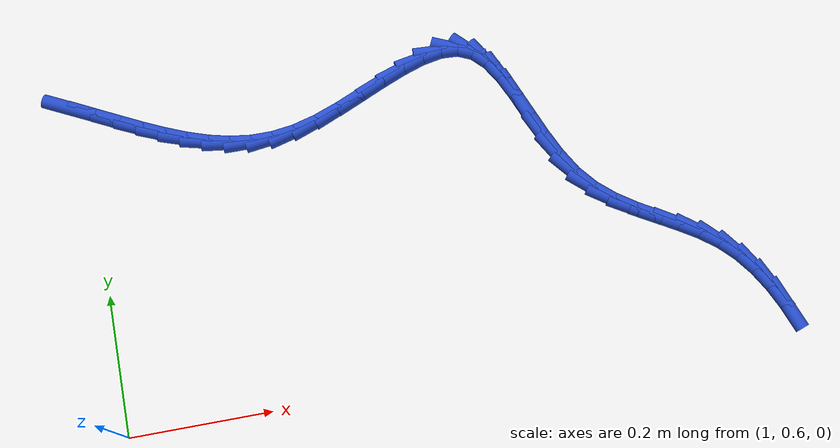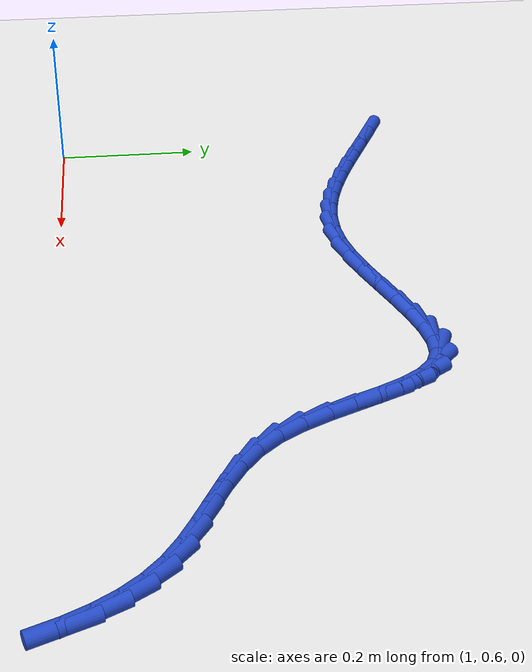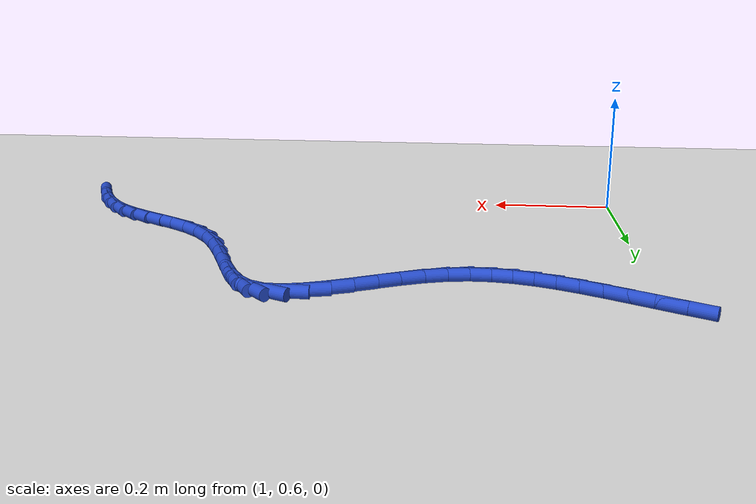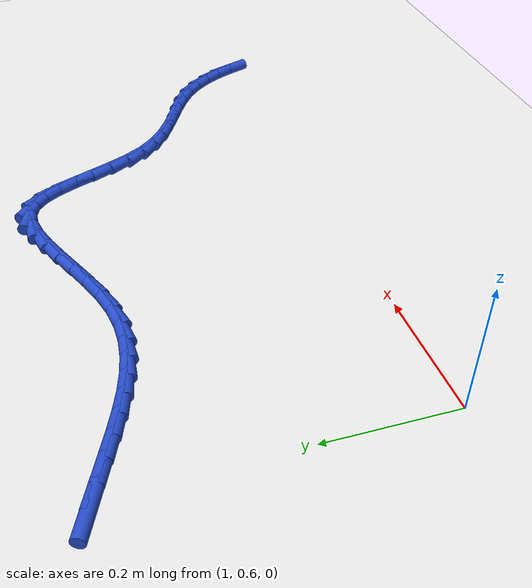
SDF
<sdf version="1.6">
 <world name="default">
  <model name="ground_plane">
   <static>1</static>
   <link name="link">
    <collision name="collision">
     <geometry><plane><normal>0 0 1</normal><size>100 100</size></plane></geometry>
     <surface><friction><ode><mu>100</mu><mu2>50</mu2></ode></friction></surface>
    </collision>
    <visual name="visual">
     <cast_shadows>0</cast_shadows>
     <geometry><plane><normal>0 0 1</normal><size>100 100</size></plane></geometry>
     <material>
      <script><uri>file://media/materials/scripts/gazebo.material</uri><name>Gazebo/WhiteGlow</name></script>
     </material>
    </visual>
   </link>
  </model>
  <model name="line">
   <link name="link_53">
    <pose>0.9800478792944008 1.0819466614217355 0.01 0 1.57 -0.4588191028057761</pose>
    <collision name="collision">
     <geometry><cylinder><radius>0.01</radius><length>0.08</length></cylinder></geometry>
    </collision>
    <visual name="visual">
     <material>
      <script><name>Gazebo/Blue</name><uri>file://media/materials/scripts/gazebo.material</uri></script>
     </material>
     <geometry><cylinder><radius>0.01</radius><length>0.08</length></cylinder></geometry>
    </visual>
   </link>
   <link name="link_54">
    <pose>1.0137996651301913 1.0652739928319868 0.01 0 1.57 -0.4673045646895924</pose>
    <collision name="collision">
     <geometry><cylinder><radius>0.01</radius><length>0.08</length></cylinder></geometry>
    </collision>
    <visual name="visual">
     <material>
      <script><name>Gazebo/Blue</name><uri>file://media/materials/scripts/gazebo.material</uri></script>
     </material>
     <geometry><cylinder><radius>0.01</radius><length>0.08</length></cylinder></geometry>
    </visual>
   </link>
   <link name="link_55">
    <pose>1.0462949452497448 1.0488775377544979 0.01 0 1.57 -0.4601664658742699</pose>
    <collision name="collision">
     <geometry><cylinder><radius>0.01</radius><length>0.08</length></cylinder></geometry>
    </collision>
    <visual name="visual">
     <material>
      <script><name>Gazebo/Blue</name><uri>file://media/materials/scripts/gazebo.material</uri></script>
     </material>
     <geometry><cylinder><radius>0.01</radius><length>0.08</length></cylinder></geometry>
    </visual>
   </link>
   <link name="link_56">
    <pose>1.0777805167422847 1.033271521729199 0.01 0 1.57 -0.4352807061181367</pose>
    <collision name="collision">
     <geometry><cylinder><radius>0.01</radius><length>0.08</length></cylinder></geometry>
    </collision>
    <visual name="visual">
     <material>
      <script><name>Gazebo/Blue</name><uri>file://media/materials/scripts/gazebo.material</uri></script>
     </material>
     <geometry><cylinder><radius>0.01</radius><length>0.08</length></cylinder></geometry>
    </visual>
   </link>
   <link name="link_57">
    <pose>1.1085363821886196 1.0189691827040934 0.01 0 1.57 -0.3907880509113712</pose>
    <collision name="collision">
     <geometry><cylinder><radius>0.01</radius><length>0.08</length></cylinder></geometry>
    </collision>
    <visual name="visual">
     <material>
      <script><name>Gazebo/Blue</name><uri>file://media/materials/scripts/gazebo.material</uri></script>
     </material>
     <geometry><cylinder><radius>0.01</radius><length>0.08</length></cylinder></geometry>
    </visual>
   </link>
   <link name="link_58">
    <pose>1.1388425441695582 1.0064837586271835 0.01 0 1.57 -0.32502557453167613</pose>
    <collision name="collision">
     <geometry><cylinder><radius>0.01</radius><length>0.08</length></cylinder></geometry>
    </collision>
    <visual name="visual">
     <material>
      <script><name>Gazebo/Blue</name><uri>file://media/materials/scripts/gazebo.material</uri></script>
     </material>
     <geometry><cylinder><radius>0.01</radius><length>0.08</length></cylinder></geometry>
    </visual>
   </link>
   <link name="link_59">
    <pose>1.1689790052659095 0.9963284874464731 0.01 0 1.57 -0.23719043581093252</pose>
    <collision name="collision">
     <geometry><cylinder><radius>0.01</radius><length>0.08</length></cylinder></geometry>
    </collision>
    <visual name="visual">
     <material>
      <script><name>Gazebo/Blue</name><uri>file://media/materials/scripts/gazebo.material</uri></script>
     </material>
     <geometry><cylinder><radius>0.01</radius><length>0.08</length></cylinder></geometry>
    </visual>
   </link>
   <link name="link_60">
    <pose>1.1992257680584817 0.9890166071099648 0.01 0 1.57 -0.12839005825136435</pose>
    <collision name="collision">
     <geometry><cylinder><radius>0.01</radius><length>0.08</length></cylinder></geometry>
    </collision>
    <visual name="visual">
     <material>
      <script><name>Gazebo/Blue</name><uri>file://media/materials/scripts/gazebo.material</uri></script>
     </material>
     <geometry><cylinder><radius>0.01</radius><length>0.08</length></cylinder></geometry>
    </visual>
   </link>
   <link name="link_61">
    <pose>1.2298628351280843 0.9850613555656613 0.01 0 1.57 -0.0027272997279025797</pose>
    <collision name="collision">
     <geometry><cylinder><radius>0.01</radius><length>0.08</length></cylinder></geometry>
    </collision>
    <visual name="visual">
     <material>
      <script><name>Gazebo/Blue</name><uri>file://media/materials/scripts/gazebo.material</uri></script>
     </material>
     <geometry><cylinder><radius>0.01</radius><length>0.08</length></cylinder></geometry>
    </visual>
   </link>
   <link name="link_62">
    <pose>1.261170209055525 0.9849759707615655 0.01 0 1.57 0.1324508776225954</pose>
    <collision name="collision">
     <geometry><cylinder><radius>0.01</radius><length>0.08</length></cylinder></geometry>
    </collision>
    <visual name="visual">
     <material>
      <script><name>Gazebo/Blue</name><uri>file://media/materials/scripts/gazebo.material</uri></script>
     </material>
     <geometry><cylinder><radius>0.01</radius><length>0.08</length></cylinder></geometry>
    </visual>
   </link>
   <link name="link_63">
    <pose>1.2934278924216134 0.9892736906456812 0.01 0 1.57 0.26433159499002545</pose>
    <collision name="collision">
     <geometry><cylinder><radius>0.01</radius><length>0.08</length></cylinder></geometry>
    </collision>
    <visual name="visual">
     <material>
      <script><name>Gazebo/Blue</name><uri>file://media/materials/scripts/gazebo.material</uri></script>
     </material>
     <geometry><cylinder><radius>0.01</radius><length>0.08</length></cylinder></geometry>
    </visual>
   </link>
   <link name="link_64">
    <pose>1.3268551706488958 0.9983212866600673 0.01 0 1.57 0.3577117290123947</pose>
    <collision name="collision">
     <geometry><cylinder><radius>0.01</radius><length>0.08</length></cylinder></geometry>
    </collision>
    <visual name="visual">
     <material>
      <script><name>Gazebo/Blue</name><uri>file://media/materials/scripts/gazebo.material</uri></script>
     </material>
     <geometry><cylinder><radius>0.01</radius><length>0.08</length></cylinder></geometry>
    </visual>
   </link>
   <link name="link_65">
    <pose>1.3611070760004595 1.011124396242834 0.01 0 1.57 0.4066435163237283</pose>
    <collision name="collision">
     <geometry><cylinder><radius>0.01</radius><length>0.08</length></cylinder></geometry>
    </collision>
    <visual name="visual">
     <material>
      <script><name>Gazebo/Blue</name><uri>file://media/materials/scripts/gazebo.material</uri></script>
     </material>
     <geometry><cylinder><radius>0.01</radius><length>0.08</length></cylinder></geometry>
    </visual>
   </link>
   <link name="link_66">
    <pose>1.395532208485417 1.0259494578505726 0.01 0 1.57 0.4187142075795374</pose>
    <collision name="collision">
     <geometry><cylinder><radius>0.01</radius><length>0.08</length></cylinder></geometry>
    </collision>
    <visual name="visual">
     <material>
      <script><name>Gazebo/Blue</name><uri>file://media/materials/scripts/gazebo.material</uri></script>
     </material>
     <geometry><cylinder><radius>0.01</radius><length>0.08</length></cylinder></geometry>
    </visual>
   </link>
   <link name="link_67">
    <pose>1.4294761205208637 1.041055558308686 0.01 0 1.57 0.39417088214150325</pose>
    <collision name="collision">
     <geometry><cylinder><radius>0.01</radius><length>0.08</length></cylinder></geometry>
    </collision>
    <visual name="visual">
     <material>
      <script><name>Gazebo/Blue</name><uri>file://media/materials/scripts/gazebo.material</uri></script>
     </material>
     <geometry><cylinder><radius>0.01</radius><length>0.08</length></cylinder></geometry>
    </visual>
   </link>
   <link name="link_68">
    <pose>1.4622843645238959 1.0547017844425797 0.01 0 1.57 0.3248248254768287</pose>
    <collision name="collision">
     <geometry><cylinder><radius>0.01</radius><length>0.08</length></cylinder></geometry>
    </collision>
    <visual name="visual">
     <material>
      <script><name>Gazebo/Blue</name><uri>file://media/materials/scripts/gazebo.material</uri></script>
     </material>
     <geometry><cylinder><radius>0.01</radius><length>0.08</length></cylinder></geometry>
    </visual>
   </link>
   <link name="link_69">
    <pose>1.4933024929116097 1.0651472230776575 0.01 0 1.57 0.1902859926249667</pose>
    <collision name="collision">
     <geometry><cylinder><radius>0.01</radius><length>0.08</length></cylinder></geometry>
    </collision>
    <visual name="visual">
     <material>
      <script><name>Gazebo/Blue</name><uri>file://media/materials/scripts/gazebo.material</uri></script>
     </material>
     <geometry><cylinder><radius>0.01</radius><length>0.08</length></cylinder></geometry>
    </visual>
   </link>
   <link name="link_70">
    <pose>1.5218760581010997 1.0706509610393231 0.01 0 1.57 -0.046243613007207765</pose>
    <collision name="collision">
     <geometry><cylinder><radius>0.01</radius><length>0.08</length></cylinder></geometry>
    </collision>
    <visual name="visual">
     <material>
      <script><name>Gazebo/Blue</name><uri>file://media/materials/scripts/gazebo.material</uri></script>
     </material>
     <geometry><cylinder><radius>0.01</radius><length>0.08</length></cylinder></geometry>
    </visual>
   </link>
   <link name="link_71">
    <pose>1.5473506125094625 1.0694720851529815 0.01 0 1.57 -0.4142637315437225</pose>
    <collision name="collision">
     <geometry><cylinder><radius>0.01</radius><length>0.08</length></cylinder></geometry>
    </collision>
    <visual name="visual">
     <material>
      <script><name>Gazebo/Blue</name><uri>file://media/materials/scripts/gazebo.material</uri></script>
     </material>
     <geometry><cylinder><radius>0.01</radius><length>0.08</length></cylinder></geometry>
    </visual>
   </link>
   <link name="link_72">
    <pose>1.5690917387170655 1.0599122985593599 0.01 0 1.57 -0.7857318883696695</pose>
    <collision name="collision">
     <geometry><cylinder><radius>0.01</radius><length>0.08</length></cylinder></geometry>
    </collision>
    <visual name="visual">
     <material>
      <script><name>Gazebo/Blue</name><uri>file://media/materials/scripts/gazebo.material</uri></script>
     </material>
     <geometry><cylinder><radius>0.01</radius><length>0.08</length></cylinder></geometry>
    </visual>
   </link>
   <link name="link_73">
    <pose>1.5871855806844457 1.041806375826062 0.01 0 1.57 -1.015746599172028</pose>
    <collision name="collision">
     <geometry><cylinder><radius>0.01</radius><length>0.08</length></cylinder></geometry>
    </collision>
    <visual name="visual">
     <material>
      <script><name>Gazebo/Blue</name><uri>file://media/materials/scripts/gazebo.material</uri></script>
     </material>
     <geometry><cylinder><radius>0.01</radius><length>0.08</length></cylinder></geometry>
    </visual>
   </link>
   <link name="link_74">
    <pose>1.602622021299245 1.0169118927762504 0.01 0 1.57 -1.1364361533943552</pose>
    <collision name="collision">
     <geometry><cylinder><radius>0.01</radius><length>0.08</length></cylinder></geometry>
    </collision>
    <visual name="visual">
     <material>
      <script><name>Gazebo/Blue</name><uri>file://media/materials/scripts/gazebo.material</uri></script>
     </material>
     <geometry><cylinder><radius>0.01</radius><length>0.08</length></cylinder></geometry>
    </visual>
   </link>
   <link name="link_75">
    <pose>1.6164481993571764 0.9871082433031377 0.01 0 1.57 -1.1868895929048582</pose>
    <collision name="collision">
     <geometry><cylinder><radius>0.01</radius><length>0.08</length></cylinder></geometry>
    </collision>
    <visual name="visual">
     <material>
      <script><name>Gazebo/Blue</name><uri>file://media/materials/scripts/gazebo.material</uri></script>
     </material>
     <geometry><cylinder><radius>0.01</radius><length>0.08</length></cylinder></geometry>
    </visual>
   </link>
   <link name="link_76">
    <pose>1.6297112536539546 0.9542748212999367 0.01 0 1.57 -1.1864009405784848</pose>
    <collision name="collision">
     <geometry><cylinder><radius>0.01</radius><length>0.08</length></cylinder></geometry>
    </collision>
    <visual name="visual">
     <material>
      <script><name>Gazebo/Blue</name><uri>file://media/materials/scripts/gazebo.material</uri></script>
     </material>
     <geometry><cylinder><radius>0.01</radius><length>0.08</length></cylinder></geometry>
    </visual>
   </link>
   <link name="link_77">
    <pose>1.643458322985291 0.9202910206598599 0.01 0 1.57 -1.1401287084549847</pose>
    <collision name="collision">
     <geometry><cylinder><radius>0.01</radius><length>0.08</length></cylinder></geometry>
    </collision>
    <visual name="visual">
     <material>
      <script><name>Gazebo/Blue</name><uri>file://media/materials/scripts/gazebo.material</uri></script>
     </material>
     <geometry><cylinder><radius>0.01</radius><length>0.08</length></cylinder></geometry>
    </visual>
   </link>
   <link name="link_78">
    <pose>1.6587365461469015 0.8870362352761205 0.01 0 1.57 -1.0432220165819766</pose>
    <collision name="collision">
     <geometry><cylinder><radius>0.01</radius><length>0.08</length></cylinder></geometry>
    </collision>
    <visual name="visual">
     <material>
      <script><name>Gazebo/Blue</name><uri>file://media/materials/scripts/gazebo.material</uri></script>
     </material>
     <geometry><cylinder><radius>0.01</radius><length>0.08</length></cylinder></geometry>
    </visual>
   </link>
   <link name="link_79">
    <pose>1.676593061934497 0.8563898590419314 0.01 0 1.57 -0.8871766139152263</pose>
    <collision name="collision">
     <geometry><cylinder><radius>0.01</radius><length>0.08</length></cylinder></geometry>
    </collision>
    <visual name="visual">
     <material>
      <script><name>Gazebo/Blue</name><uri>file://media/materials/scripts/gazebo.material</uri></script>
     </material>
     <geometry><cylinder><radius>0.01</radius><length>0.08</length></cylinder></geometry>
    </visual>
   </link>
   <link name="link_80">
    <pose>1.697996767667726 0.8301168679540917 0.01 0 1.57 -0.7230200372478</pose>
    <collision name="collision">
     <geometry><cylinder><radius>0.01</radius><length>0.08</length></cylinder></geometry>
    </collision>
    <visual name="visual">
     <material>
      <script><name>Gazebo/Blue</name><uri>file://media/materials/scripts/gazebo.material</uri></script>
     </material>
     <geometry><cylinder><radius>0.01</radius><length>0.08</length></cylinder></geometry>
    </visual>
   </link>
   <link name="link_81">
    <pose>1.7227490162874297 0.8082748574932646 0.01 0 1.57 -0.604784344872066</pose>
    <collision name="collision">
     <geometry><cylinder><radius>0.01</radius><length>0.08</length></cylinder></geometry>
    </collision>
    <visual name="visual">
     <material>
      <script><name>Gazebo/Blue</name><uri>file://media/materials/scripts/gazebo.material</uri></script>
     </material>
     <geometry><cylinder><radius>0.01</radius><length>0.08</length></cylinder></geometry>
    </visual>
   </link>
   <link name="link_82">
    <pose>1.7497540063572168 0.7896094525362793 0.01 0 1.57 -0.5376297878768322</pose>
    <collision name="collision">
     <geometry><cylinder><radius>0.01</radius><length>0.08</length></cylinder></geometry>
    </collision>
    <visual name="visual">
     <material>
      <script><name>Gazebo/Blue</name><uri>file://media/materials/scripts/gazebo.material</uri></script>
     </material>
     <geometry><cylinder><radius>0.01</radius><length>0.08</length></cylinder></geometry>
    </visual>
   </link>
   <link name="link_83">
    <pose>1.7778929521006646 0.7728326663773528 0.01 0 1.57 -0.5215015527609766</pose>
    <collision name="collision">
     <geometry><cylinder><radius>0.01</radius><length>0.08</length></cylinder></geometry>
    </collision>
    <visual name="visual">
     <material>
      <script><name>Gazebo/Blue</name><uri>file://media/materials/scripts/gazebo.material</uri></script>
     </material>
     <geometry><cylinder><radius>0.01</radius><length>0.08</length></cylinder></geometry>
    </visual>
   </link>
   <link name="link_84">
    <pose>1.8060470677413514 0.7566565123107021 0.01 0 1.57 -0.557453972665638</pose>
    <collision name="collision">
     <geometry><cylinder><radius>0.01</radius><length>0.08</length></cylinder></geometry>
    </collision>
    <visual name="visual">
     <material>
      <script><name>Gazebo/Blue</name><uri>file://media/materials/scripts/gazebo.material</uri></script>
     </material>
     <geometry><cylinder><radius>0.01</radius><length>0.08</length></cylinder></geometry>
    </visual>
   </link>
   <link name="link_85">
    <pose>1.8330975675028551 0.7397930036305437 0.01 0 1.57 -0.6490911910515204</pose>
    <collision name="collision">
     <geometry><cylinder><radius>0.01</radius><length>0.08</length></cylinder></geometry>
    </collision>
    <visual name="visual">
     <material>
      <script><name>Gazebo/Blue</name><uri>file://media/materials/scripts/gazebo.material</uri></script>
     </material>
     <geometry><cylinder><radius>0.01</radius><length>0.08</length></cylinder></geometry>
    </visual>
   </link>
   <link name="link_86">
    <pose>1.8579256656087526 0.7209541536310945 0.01 0 1.57 -0.7895054537861119</pose>
    <collision name="collision">
     <geometry><cylinder><radius>0.01</radius><length>0.08</length></cylinder></geometry>
    </collision>
    <visual name="visual">
     <material>
      <script><name>Gazebo/Blue</name><uri>file://media/materials/scripts/gazebo.material</uri></script>
     </material>
     <geometry><cylinder><radius>0.01</radius><length>0.08</length></cylinder></geometry>
    </visual>
   </link>
   <link name="link_87">
    <pose>1.8796138187446523 0.6990871056302127 0.01 0 1.57 -0.9274653205116838</pose>
    <collision name="collision">
     <geometry><cylinder><radius>0.01</radius><length>0.08</length></cylinder></geometry>
    </collision>
    <visual name="visual">
     <material>
      <script><name>Gazebo/Blue</name><uri>file://media/materials/scripts/gazebo.material</uri></script>
     </material>
     <geometry><cylinder><radius>0.01</radius><length>0.08</length></cylinder></geometry>
    </visual>
   </link>
   <link name="link_88">
    <pose>1.898216515938679 0.6742747174732636 0.01 0 1.57 -1.0448835027168366</pose>
    <collision name="collision">
     <geometry><cylinder><radius>0.01</radius><length>0.08</length></cylinder></geometry>
    </collision>
    <visual name="visual">
     <material>
      <script><name>Gazebo/Blue</name><uri>file://media/materials/scripts/gazebo.material</uri></script>
     </material>
     <geometry><cylinder><radius>0.01</radius><length>0.08</length></cylinder></geometry>
    </visual>
   </link>
   <link name="link_89">
    <pose>1.914081340941237 0.6469422964483567 0.01 0 1.57 -1.1413939349843851</pose>
    <collision name="collision">
     <geometry><cylinder><radius>0.01</radius><length>0.08</length></cylinder></geometry>
    </collision>
    <visual name="visual">
     <material>
      <script><name>Gazebo/Blue</name><uri>file://media/materials/scripts/gazebo.material</uri></script>
     </material>
     <geometry><cylinder><radius>0.01</radius><length>0.08</length></cylinder></geometry>
    </visual>
   </link>
   <link name="link_90">
    <pose>1.9275559378010494 0.617515220295659 0.01 0 1.57 -1.218500921179598</pose>
    <collision name="collision">
     <geometry><cylinder><radius>0.01</radius><length>0.08</length></cylinder></geometry>
    </collision>
    <visual name="visual">
     <material>
      <script><name>Gazebo/Blue</name><uri>file://media/materials/scripts/gazebo.material</uri></script>
     </material>
     <geometry><cylinder><radius>0.01</radius><length>0.08</length></cylinder></geometry>
    </visual>
   </link>
  </model>
 </world>
</sdf>
